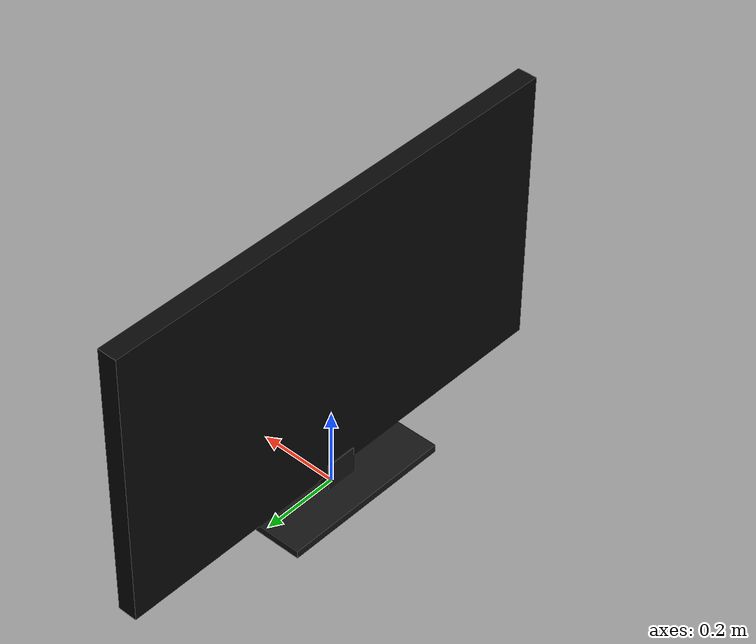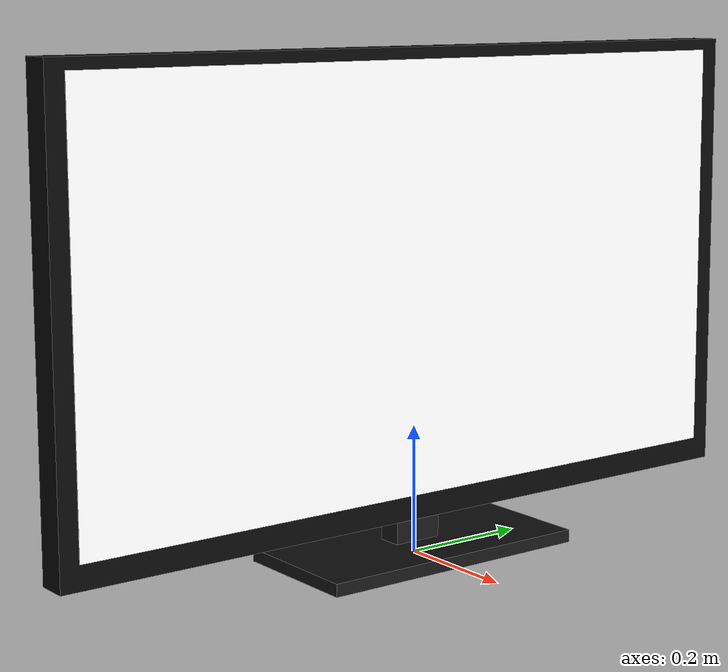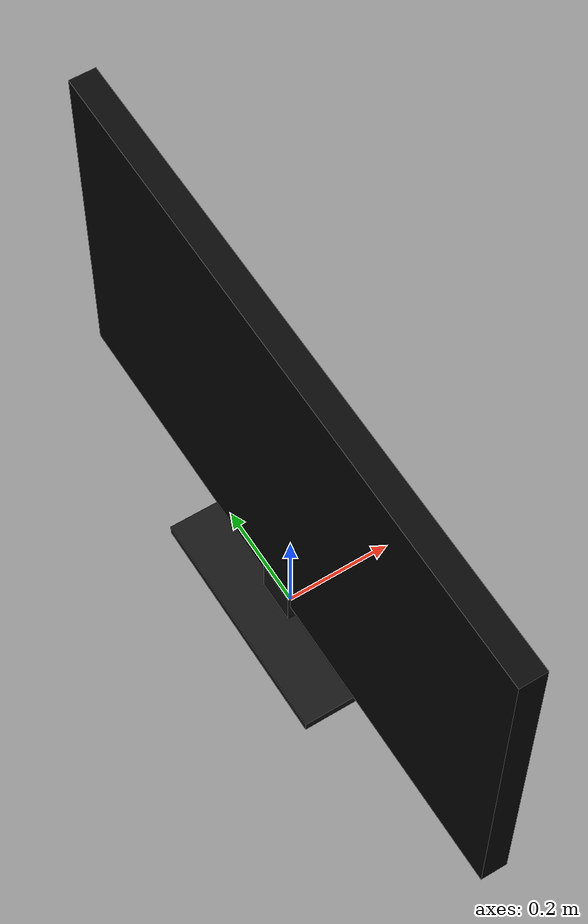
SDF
<?xml version="1.0"?>
<!-- 55-inch flat-screen TV. Model origin: centre of the bottom of the foot, screen faces +X. -->
<sdf version="1.9">
  <model name="tv">
    <static>true</static>
    <link name="link">
      <collision name="collision">
        <pose>0 0 0.42 0 0 0</pose>
        <geometry><box><size>0.06 1.24 0.72</size></box></geometry>
      </collision>
      <visual name="foot">
        <pose>0 0 0.01 0 0 0</pose>
        <geometry><box><size>0.22 0.45 0.02</size></box></geometry>
        <material><ambient>0.05 0.05 0.05 1</ambient><diffuse>0.08 0.08 0.08 1</diffuse></material>
      </visual>
      <visual name="neck">
        <pose>-0.01 0 0.05 0 0 0</pose>
        <geometry><box><size>0.04 0.08 0.08</size></box></geometry>
        <material><ambient>0.05 0.05 0.05 1</ambient><diffuse>0.08 0.08 0.08 1</diffuse></material>
      </visual>
      <visual name="bezel">
        <pose>0 0 0.42 0 0 0</pose>
        <geometry><box><size>0.05 1.24 0.72</size></box></geometry>
        <material>
          <ambient>0.02 0.02 0.02 1</ambient>
          <diffuse>0.03 0.03 0.03 1</diffuse>
          <specular>0.3 0.3 0.3 1</specular>
          <pbr><metal><metalness>0.2</metalness><roughness>0.3</roughness></metal></pbr>
        </material>
      </visual>
      <visual name="screen">
        <pose>0.0255 0 0.43 0 0 0</pose>
        <geometry><box><size>0.001 1.18 0.664</size></box></geometry>
        <material>
          <ambient>1 1 1 1</ambient>
          <diffuse>1 1 1 1</diffuse>
          <emissive>0.6 0.6 0.6 1</emissive>
          <pbr>
            <metal>
              <albedo_map>model://tv/materials/textures/screen.png</albedo_map>
              <emissive_map>model://tv/materials/textures/screen.png</emissive_map>
              <metalness>0.0</metalness>
              <roughness>0.4</roughness>
            </metal>
          </pbr>
        </material>
      </visual>
    </link>
  </model>
</sdf>
